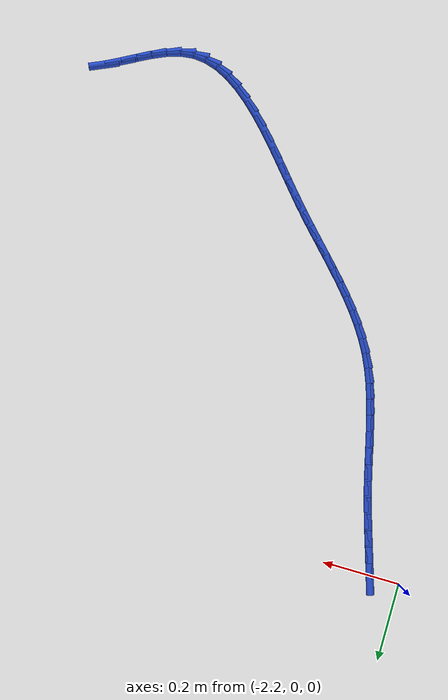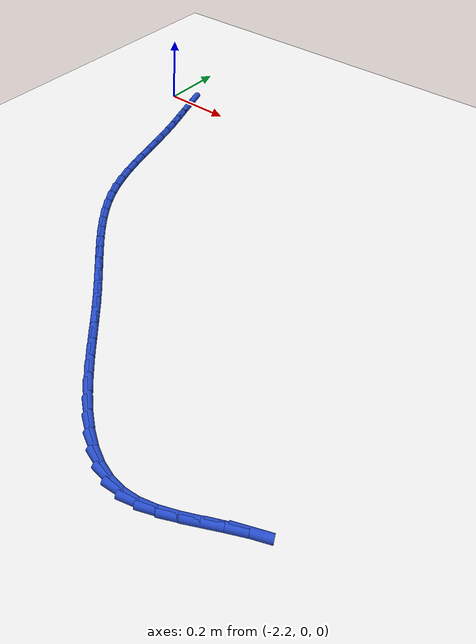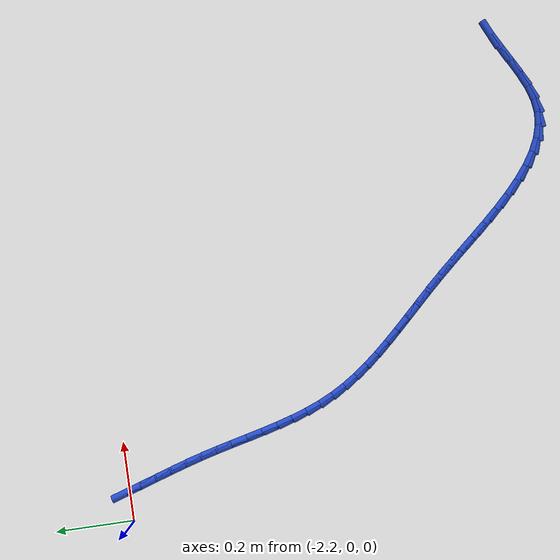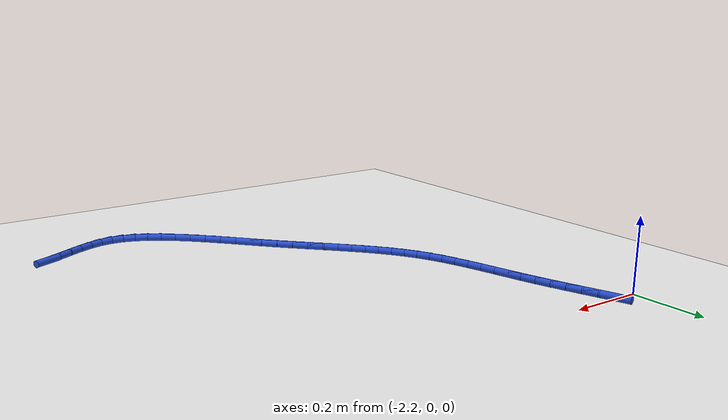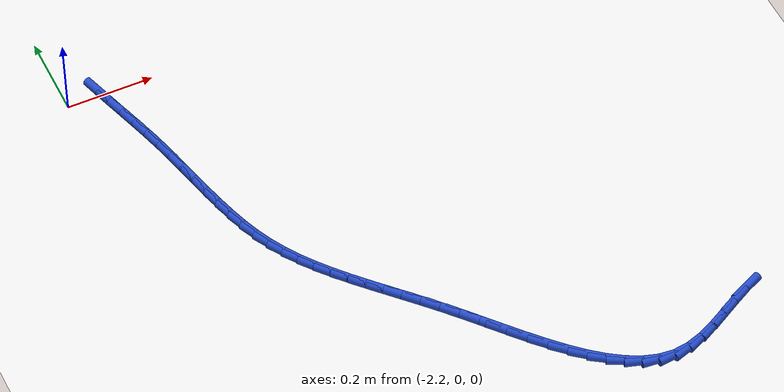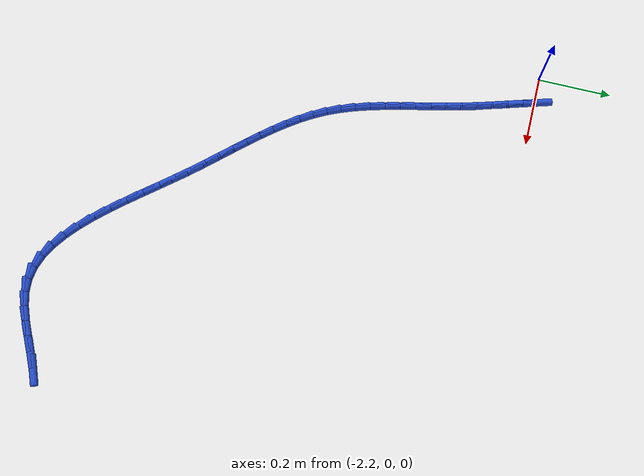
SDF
<sdf version="1.6">
 <world name="default">
  <model name="ground_plane">
   <static>1</static>
   <link name="link">
    <collision name="collision">
     <geometry><plane><normal>0 0 1</normal><size>100 100</size></plane></geometry>
     <surface><friction><ode><mu>100</mu><mu2>50</mu2></ode></friction></surface>
    </collision>
    <visual name="visual">
     <cast_shadows>0</cast_shadows>
     <geometry><plane><normal>0 0 1</normal><size>100 100</size></plane></geometry>
     <material>
      <script><uri>file://media/materials/scripts/gazebo.material</uri><name>Gazebo/WhiteGlow</name></script>
     </material>
    </visual>
   </link>
  </model>
  <model name="line">
   <link name="link_86">
    <pose>-2.124805486058117 0.00668926109204163 0.01 0 1.57 -1.2703420955373987</pose>
    <collision name="collision">
     <geometry><cylinder><radius>0.01</radius><length>0.08</length></cylinder></geometry>
    </collision>
    <visual name="visual">
     <material>
      <script><name>Gazebo/Blue</name><uri>file://media/materials/scripts/gazebo.material</uri></script>
     </material>
     <geometry><cylinder><radius>0.01</radius><length>0.08</length></cylinder></geometry>
    </visual>
   </link>
   <link name="link_87">
    <pose>-2.112500402421179 -0.03302582186162491 0.01 0 1.57 -1.2643752280755183</pose>
    <collision name="collision">
     <geometry><cylinder><radius>0.01</radius><length>0.08</length></cylinder></geometry>
    </collision>
    <visual name="visual">
     <material>
      <script><name>Gazebo/Blue</name><uri>file://media/materials/scripts/gazebo.material</uri></script>
     </material>
     <geometry><cylinder><radius>0.01</radius><length>0.08</length></cylinder></geometry>
    </visual>
   </link>
   <link name="link_88">
    <pose>-2.099879411871128 -0.07291695329020839 0.01 0 1.57 -1.2661972590735602</pose>
    <collision name="collision">
     <geometry><cylinder><radius>0.01</radius><length>0.08</length></cylinder></geometry>
    </collision>
    <visual name="visual">
     <material>
      <script><name>Gazebo/Blue</name><uri>file://media/materials/scripts/gazebo.material</uri></script>
     </material>
     <geometry><cylinder><radius>0.01</radius><length>0.08</length></cylinder></geometry>
    </visual>
   </link>
   <link name="link_89">
    <pose>-2.087272794178996 -0.11301655553434213 0.01 0 1.57 -1.2757089311542888</pose>
    <collision name="collision">
     <geometry><cylinder><radius>0.01</radius><length>0.08</length></cylinder></geometry>
    </collision>
    <visual name="visual">
     <material>
      <script><name>Gazebo/Blue</name><uri>file://media/materials/scripts/gazebo.material</uri></script>
     </material>
     <geometry><cylinder><radius>0.01</radius><length>0.08</length></cylinder></geometry>
    </visual>
   </link>
   <link name="link_90">
    <pose>-2.075010829115816 -0.15335705093465724 0.01 0 1.57 -1.292881722788589</pose>
    <collision name="collision">
     <geometry><cylinder><radius>0.01</radius><length>0.08</length></cylinder></geometry>
    </collision>
    <visual name="visual">
     <material>
      <script><name>Gazebo/Blue</name><uri>file://media/materials/scripts/gazebo.material</uri></script>
     </material>
     <geometry><cylinder><radius>0.01</radius><length>0.08</length></cylinder></geometry>
    </visual>
   </link>
   <link name="link_91">
    <pose>-2.0634237964526205 -0.19397086183178702 0.01 0 1.57 -1.3160131389282108</pose>
    <collision name="collision">
     <geometry><cylinder><radius>0.01</radius><length>0.08</length></cylinder></geometry>
    </collision>
    <visual name="visual">
     <material>
      <script><name>Gazebo/Blue</name><uri>file://media/materials/scripts/gazebo.material</uri></script>
     </material>
     <geometry><cylinder><radius>0.01</radius><length>0.08</length></cylinder></geometry>
    </visual>
   </link>
   <link name="link_92">
    <pose>-2.0527730795088215 -0.23486544196000003 0.01 0 1.57 -1.3333577851280374</pose>
    <collision name="collision">
     <geometry><cylinder><radius>0.01</radius><length>0.08</length></cylinder></geometry>
    </collision>
    <visual name="visual">
     <material>
      <script><name>Gazebo/Blue</name><uri>file://media/materials/scripts/gazebo.material</uri></script>
     </material>
     <geometry><cylinder><radius>0.01</radius><length>0.08</length></cylinder></geometry>
    </visual>
   </link>
   <link name="link_93">
    <pose>-2.0428480891049157 -0.2758771985734834 0.01 0 1.57 -1.3400387982809687</pose>
    <collision name="collision">
     <geometry><cylinder><radius>0.01</radius><length>0.08</length></cylinder></geometry>
    </collision>
    <visual name="visual">
     <material>
      <script><name>Gazebo/Blue</name><uri>file://media/materials/scripts/gazebo.material</uri></script>
     </material>
     <geometry><cylinder><radius>0.01</radius><length>0.08</length></cylinder></geometry>
    </visual>
   </link>
   <link name="link_94">
    <pose>-2.0332404293103887 -0.31677085223159634 0.01 0 1.57 -1.3359560117071325</pose>
    <collision name="collision">
     <geometry><cylinder><radius>0.01</radius><length>0.08</length></cylinder></geometry>
    </collision>
    <visual name="visual">
     <material>
      <script><name>Gazebo/Blue</name><uri>file://media/materials/scripts/gazebo.material</uri></script>
     </material>
     <geometry><cylinder><radius>0.01</radius><length>0.08</length></cylinder></geometry>
    </visual>
   </link>
   <link name="link_95">
    <pose>-2.0235410303461636 -0.3573108792857706 0.01 0 1.57 -1.3208180801710654</pose>
    <collision name="collision">
     <geometry><cylinder><radius>0.01</radius><length>0.08</length></cylinder></geometry>
    </collision>
    <visual name="visual">
     <material>
      <script><name>Gazebo/Blue</name><uri>file://media/materials/scripts/gazebo.material</uri></script>
     </material>
     <geometry><cylinder><radius>0.01</radius><length>0.08</length></cylinder></geometry>
    </visual>
   </link>
   <link name="link_96">
    <pose>-2.013340822433165 -0.3972617560874406 0.01 0 1.57 -1.2941237972825785</pose>
    <collision name="collision">
     <geometry><cylinder><radius>0.01</radius><length>0.08</length></cylinder></geometry>
    </collision>
    <visual name="visual">
     <material>
      <script><name>Gazebo/Blue</name><uri>file://media/materials/scripts/gazebo.material</uri></script>
     </material>
     <geometry><cylinder><radius>0.01</radius><length>0.08</length></cylinder></geometry>
    </visual>
   </link>
   <link name="link_97">
    <pose>-2.002230735792314 -0.43638795898803956 0.01 0 1.57 -1.2551968284076762</pose>
    <collision name="collision">
     <geometry><cylinder><radius>0.01</radius><length>0.08</length></cylinder></geometry>
    </collision>
    <visual name="visual">
     <material>
      <script><name>Gazebo/Blue</name><uri>file://media/materials/scripts/gazebo.material</uri></script>
     </material>
     <geometry><cylinder><radius>0.01</radius><length>0.08</length></cylinder></geometry>
    </visual>
   </link>
   <link name="link_98">
    <pose>-1.989801700644534 -0.4744539643390009 0.01 0 1.57 -1.2032757833776213</pose>
    <collision name="collision">
     <geometry><cylinder><radius>0.01</radius><length>0.08</length></cylinder></geometry>
    </collision>
    <visual name="visual">
     <material>
      <script><name>Gazebo/Blue</name><uri>file://media/materials/scripts/gazebo.material</uri></script>
     </material>
     <geometry><cylinder><radius>0.01</radius><length>0.08</length></cylinder></geometry>
    </visual>
   </link>
   <link name="link_99">
    <pose>-1.9756446472107496 -0.5112242484917588 0.01 0 1.57 -1.1377165312098574</pose>
    <collision name="collision">
     <geometry><cylinder><radius>0.01</radius><length>0.08</length></cylinder></geometry>
    </collision>
    <visual name="visual">
     <material>
      <script><name>Gazebo/Blue</name><uri>file://media/materials/scripts/gazebo.material</uri></script>
     </material>
     <geometry><cylinder><radius>0.01</radius><length>0.08</length></cylinder></geometry>
    </visual>
   </link>
   <link name="link_100">
    <pose>-1.9593513841053947 -0.5464640584536103 0.01 0 1.57 -1.0643026636122184</pose>
    <collision name="collision">
     <geometry><cylinder><radius>0.01</radius><length>0.08</length></cylinder></geometry>
    </collision>
    <visual name="visual">
     <material>
      <script><name>Gazebo/Blue</name><uri>file://media/materials/scripts/gazebo.material</uri></script>
     </material>
     <geometry><cylinder><radius>0.01</radius><length>0.08</length></cylinder></geometry>
    </visual>
   </link>
   <link name="link_101">
    <pose>-1.9406934178801662 -0.5800962986684634 0.01 0 1.57 -0.9974608160591713</pose>
    <collision name="collision">
     <geometry><cylinder><radius>0.01</radius><length>0.08</length></cylinder></geometry>
    </collision>
    <visual name="visual">
     <material>
      <script><name>Gazebo/Blue</name><uri>file://media/materials/scripts/gazebo.material</uri></script>
     </material>
     <geometry><cylinder><radius>0.01</radius><length>0.08</length></cylinder></geometry>
    </visual>
   </link>
   <link name="link_102">
    <pose>-1.9198400286372739 -0.6123928589902917 0.01 0 1.57 -0.9403830409971201</pose>
    <collision name="collision">
     <geometry><cylinder><radius>0.01</radius><length>0.08</length></cylinder></geometry>
    </collision>
    <visual name="visual">
     <material>
      <script><name>Gazebo/Blue</name><uri>file://media/materials/scripts/gazebo.material</uri></script>
     </material>
     <geometry><cylinder><radius>0.01</radius><length>0.08</length></cylinder></geometry>
    </visual>
   </link>
   <link name="link_103">
    <pose>-1.8970138320551004 -0.6436724230779839 0.01 0 1.57 -0.8938383938497099</pose>
    <collision name="collision">
     <geometry><cylinder><radius>0.01</radius><length>0.08</length></cylinder></geometry>
    </collision>
    <visual name="visual">
     <material>
      <script><name>Gazebo/Blue</name><uri>file://media/materials/scripts/gazebo.material</uri></script>
     </material>
     <geometry><cylinder><radius>0.01</radius><length>0.08</length></cylinder></geometry>
    </visual>
   </link>
   <link name="link_104">
    <pose>-1.8724374438120295 -0.674253674590429 0.01 0 1.57 -0.8580454339051463</pose>
    <collision name="collision">
     <geometry><cylinder><radius>0.01</radius><length>0.08</length></cylinder></geometry>
    </collision>
    <visual name="visual">
     <material>
      <script><name>Gazebo/Blue</name><uri>file://media/materials/scripts/gazebo.material</uri></script>
     </material>
     <geometry><cylinder><radius>0.01</radius><length>0.08</length></cylinder></geometry>
    </visual>
   </link>
   <link name="link_105">
    <pose>-1.8463334795864454 -0.7044552971865145 0.01 0 1.57 -0.8328303569944103</pose>
    <collision name="collision">
     <geometry><cylinder><radius>0.01</radius><length>0.08</length></cylinder></geometry>
    </collision>
    <visual name="visual">
     <material>
      <script><name>Gazebo/Blue</name><uri>file://media/materials/scripts/gazebo.material</uri></script>
     </material>
     <geometry><cylinder><radius>0.01</radius><length>0.08</length></cylinder></geometry>
    </visual>
   </link>
   <link name="link_106">
    <pose>-1.8189245550567321 -0.7345959745251291 0.01 0 1.57 -0.8177719190619294</pose>
    <collision name="collision">
     <geometry><cylinder><radius>0.01</radius><length>0.08</length></cylinder></geometry>
    </collision>
    <visual name="visual">
     <material>
      <script><name>Gazebo/Blue</name><uri>file://media/materials/scripts/gazebo.material</uri></script>
     </material>
     <geometry><cylinder><radius>0.01</radius><length>0.08</length></cylinder></geometry>
    </visual>
   </link>
   <link name="link_107">
    <pose>-1.7904332859012733 -0.7649943902651621 0.01 0 1.57 -0.812309480068283</pose>
    <collision name="collision">
     <geometry><cylinder><radius>0.01</radius><length>0.08</length></cylinder></geometry>
    </collision>
    <visual name="visual">
     <material>
      <script><name>Gazebo/Blue</name><uri>file://media/materials/scripts/gazebo.material</uri></script>
     </material>
     <geometry><cylinder><radius>0.01</radius><length>0.08</length></cylinder></geometry>
    </visual>
   </link>
   <link name="link_108">
    <pose>-1.7610822877984527 -0.7959692280655016 0.01 0 1.57 -0.8158105638126812</pose>
    <collision name="collision">
     <geometry><cylinder><radius>0.01</radius><length>0.08</length></cylinder></geometry>
    </collision>
    <visual name="visual">
     <material>
      <script><name>Gazebo/Blue</name><uri>file://media/materials/scripts/gazebo.material</uri></script>
     </material>
     <geometry><cylinder><radius>0.01</radius><length>0.08</length></cylinder></geometry>
    </visual>
   </link>
   <link name="link_109">
    <pose>-1.7310941764266534 -0.8278391715850362 0.01 0 1.57 -0.8276045912970086</pose>
    <collision name="collision">
     <geometry><cylinder><radius>0.01</radius><length>0.08</length></cylinder></geometry>
    </collision>
    <visual name="visual">
     <material>
      <script><name>Gazebo/Blue</name><uri>file://media/materials/scripts/gazebo.material</uri></script>
     </material>
     <geometry><cylinder><radius>0.01</radius><length>0.08</length></cylinder></geometry>
    </visual>
   </link>
   <link name="link_110">
    <pose>-1.7006915674642595 -0.8609229044826548 0.01 0 1.57 -0.8464298767956584</pose>
    <collision name="collision">
     <geometry><cylinder><radius>0.01</radius><length>0.08</length></cylinder></geometry>
    </collision>
    <visual name="visual">
     <material>
      <script><name>Gazebo/Blue</name><uri>file://media/materials/scripts/gazebo.material</uri></script>
     </material>
     <geometry><cylinder><radius>0.01</radius><length>0.08</length></cylinder></geometry>
    </visual>
   </link>
   <link name="link_111">
    <pose>-1.6700897291925667 -0.8955081705704829 0.01 0 1.57 -0.8616052384542773</pose>
    <collision name="collision">
     <geometry><cylinder><radius>0.01</radius><length>0.08</length></cylinder></geometry>
    </collision>
    <visual name="visual">
     <material>
      <script><name>Gazebo/Blue</name><uri>file://media/materials/scripts/gazebo.material</uri></script>
     </material>
     <geometry><cylinder><radius>0.01</radius><length>0.08</length></cylinder></geometry>
    </visual>
   </link>
   <link name="link_112">
    <pose>-1.6393678011584605 -0.9313094763452688 0.01 0 1.57 -0.8648532794849211</pose>
    <collision name="collision">
     <geometry><cylinder><radius>0.01</radius><length>0.08</length></cylinder></geometry>
    </collision>
    <visual name="visual">
     <material>
      <script><name>Gazebo/Blue</name><uri>file://media/materials/scripts/gazebo.material</uri></script>
     </material>
     <geometry><cylinder><radius>0.01</radius><length>0.08</length></cylinder></geometry>
    </visual>
   </link>
   <link name="link_113">
    <pose>-1.6084848787024113 -0.9675358228429721 0.01 0 1.57 -0.8563082668981181</pose>
    <collision name="collision">
     <geometry><cylinder><radius>0.01</radius><length>0.08</length></cylinder></geometry>
    </collision>
    <visual name="visual">
     <material>
      <script><name>Gazebo/Blue</name><uri>file://media/materials/scripts/gazebo.material</uri></script>
     </material>
     <geometry><cylinder><radius>0.01</radius><length>0.08</length></cylinder></geometry>
    </visual>
   </link>
   <link name="link_114">
    <pose>-1.5773959426259019 -1.0033788847996097 0.01 0 1.57 -0.8355366187423765</pose>
    <collision name="collision">
     <geometry><cylinder><radius>0.01</radius><length>0.08</length></cylinder></geometry>
    </collision>
    <visual name="visual">
     <material>
      <script><name>Gazebo/Blue</name><uri>file://media/materials/scripts/gazebo.material</uri></script>
     </material>
     <geometry><cylinder><radius>0.01</radius><length>0.08</length></cylinder></geometry>
    </visual>
   </link>
   <link name="link_115">
    <pose>-1.546055973730413 -1.0380303369511965 0.01 0 1.57 -0.8011930087458571</pose>
    <collision name="collision">
     <geometry><cylinder><radius>0.01</radius><length>0.08</length></cylinder></geometry>
    </collision>
    <visual name="visual">
     <material>
      <script><name>Gazebo/Blue</name><uri>file://media/materials/scripts/gazebo.material</uri></script>
     </material>
     <geometry><cylinder><radius>0.01</radius><length>0.08</length></cylinder></geometry>
    </visual>
   </link>
   <link name="link_116">
    <pose>-1.514419952817429 -1.0706818540337477 0.01 0 1.57 -0.7508951461276074</pose>
    <collision name="collision">
     <geometry><cylinder><radius>0.01</radius><length>0.08</length></cylinder></geometry>
    </collision>
    <visual name="visual">
     <material>
      <script><name>Gazebo/Blue</name><uri>file://media/materials/scripts/gazebo.material</uri></script>
     </material>
     <geometry><cylinder><radius>0.01</radius><length>0.08</length></cylinder></geometry>
    </visual>
   </link>
   <link name="link_117">
    <pose>-1.4824428606884301 -1.1005251107832787 0.01 0 1.57 -0.6810418832160923</pose>
    <collision name="collision">
     <geometry><cylinder><radius>0.01</radius><length>0.08</length></cylinder></geometry>
    </collision>
    <visual name="visual">
     <material>
      <script><name>Gazebo/Blue</name><uri>file://media/materials/scripts/gazebo.material</uri></script>
     </material>
     <geometry><cylinder><radius>0.01</radius><length>0.08</length></cylinder></geometry>
    </visual>
   </link>
   <link name="link_118">
    <pose>-1.4500796781449001 -1.1267517819358062 0.01 0 1.57 -0.5867116113080776</pose>
    <collision name="collision">
     <geometry><cylinder><radius>0.01</radius><length>0.08</length></cylinder></geometry>
    </collision>
    <visual name="visual">
     <material>
      <script><name>Gazebo/Blue</name><uri>file://media/materials/scripts/gazebo.material</uri></script>
     </material>
     <geometry><cylinder><radius>0.01</radius><length>0.08</length></cylinder></geometry>
    </visual>
   </link>
   <link name="link_119">
    <pose>-1.4172853859883203 -1.148553542227345 0.01 0 1.57 -0.46204282572813776</pose>
    <collision name="collision">
     <geometry><cylinder><radius>0.01</radius><length>0.08</length></cylinder></geometry>
    </collision>
    <visual name="visual">
     <material>
      <script><name>Gazebo/Blue</name><uri>file://media/materials/scripts/gazebo.material</uri></script>
     </material>
     <geometry><cylinder><radius>0.01</radius><length>0.08</length></cylinder></geometry>
    </visual>
   </link>
   <link name="link_120">
    <pose>-1.3840149650201727 -1.1651220663939104 0.01 0 1.57 -0.3019975594512545</pose>
    <collision name="collision">
     <geometry><cylinder><radius>0.01</radius><length>0.08</length></cylinder></geometry>
    </collision>
    <visual name="visual">
     <material>
      <script><name>Gazebo/Blue</name><uri>file://media/materials/scripts/gazebo.material</uri></script>
     </material>
     <geometry><cylinder><radius>0.01</radius><length>0.08</length></cylinder></geometry>
    </visual>
   </link>
   <link name="link_121">
    <pose>-1.3502233960419396 -1.1756490291715187 0.01 0 1.57 -0.10661740809480706</pose>
    <collision name="collision">
     <geometry><cylinder><radius>0.01</radius><length>0.08</length></cylinder></geometry>
    </collision>
    <visual name="visual">
     <material>
      <script><name>Gazebo/Blue</name><uri>file://media/materials/scripts/gazebo.material</uri></script>
     </material>
     <geometry><cylinder><radius>0.01</radius><length>0.08</length></cylinder></geometry>
    </visual>
   </link>
   <link name="link_122">
    <pose>-1.3158656598551037 -1.1793261052961845 0.01 0 1.57 0.11146605025722367</pose>
    <collision name="collision">
     <geometry><cylinder><radius>0.01</radius><length>0.08</length></cylinder></geometry>
    </collision>
    <visual name="visual">
     <material>
      <script><name>Gazebo/Blue</name><uri>file://media/materials/scripts/gazebo.material</uri></script>
     </material>
     <geometry><cylinder><radius>0.01</radius><length>0.08</length></cylinder></geometry>
    </visual>
   </link>
   <link name="link_123">
    <pose>-1.2808970488558427 -1.1754120686841485 0.01 0 1.57 0.296905411339959</pose>
    <collision name="collision">
     <geometry><cylinder><radius>0.01</radius><length>0.08</length></cylinder></geometry>
    </collision>
    <visual name="visual">
     <material>
      <script><name>Gazebo/Blue</name><uri>file://media/materials/scripts/gazebo.material</uri></script>
     </material>
     <geometry><cylinder><radius>0.01</radius><length>0.08</length></cylinder></geometry>
    </visual>
   </link>
   <link name="link_124">
    <pose>-1.2452791204457012 -1.1645148071180838 0.01 0 1.57 0.4156908764457663</pose>
    <collision name="collision">
     <geometry><cylinder><radius>0.01</radius><length>0.08</length></cylinder></geometry>
    </collision>
    <visual name="visual">
     <material>
      <script><name>Gazebo/Blue</name><uri>file://media/materials/scripts/gazebo.material</uri></script>
     </material>
     <geometry><cylinder><radius>0.01</radius><length>0.08</length></cylinder></geometry>
    </visual>
   </link>
   <link name="link_125">
    <pose>-1.208979233618258 -1.1484915302570335 0.01 0 1.57 0.479467391746247</pose>
    <collision name="collision">
     <geometry><cylinder><radius>0.01</radius><length>0.08</length></cylinder></geometry>
    </collision>
    <visual name="visual">
     <material>
      <script><name>Gazebo/Blue</name><uri>file://media/materials/scripts/gazebo.material</uri></script>
     </material>
     <geometry><cylinder><radius>0.01</radius><length>0.08</length></cylinder></geometry>
    </visual>
   </link>
   <link name="link_126">
    <pose>-1.1719649661075089 -1.129246551586998 0.01 0 1.57 0.4986406639271848</pose>
    <collision name="collision">
     <geometry><cylinder><radius>0.01</radius><length>0.08</length></cylinder></geometry>
    </collision>
    <visual name="visual">
     <material>
      <script><name>Gazebo/Blue</name><uri>file://media/materials/scripts/gazebo.material</uri></script>
     </material>
     <geometry><cylinder><radius>0.01</radius><length>0.08</length></cylinder></geometry>
    </visual>
   </link>
   <link name="link_127">
    <pose>-1.1342038956474503 -1.1086841845939799 0.01 0 1.57 0.4781803343920975</pose>
    <collision name="collision">
     <geometry><cylinder><radius>0.01</radius><length>0.08</length></cylinder></geometry>
    </collision>
    <visual name="visual">
     <material>
      <script><name>Gazebo/Blue</name><uri>file://media/materials/scripts/gazebo.material</uri></script>
     </material>
     <geometry><cylinder><radius>0.01</radius><length>0.08</length></cylinder></geometry>
    </visual>
   </link>
   <link name="link_128">
    <pose>-1.095663599972077 -1.0887087427639799 0.01 0 1.57 0.4181065661008049</pose>
    <collision name="collision">
     <geometry><cylinder><radius>0.01</radius><length>0.08</length></cylinder></geometry>
    </collision>
    <visual name="visual">
     <material>
      <script><name>Gazebo/Blue</name><uri>file://media/materials/scripts/gazebo.material</uri></script>
     </material>
     <geometry><cylinder><radius>0.01</radius><length>0.08</length></cylinder></geometry>
    </visual>
   </link>
  </model>
 </world>
</sdf>
